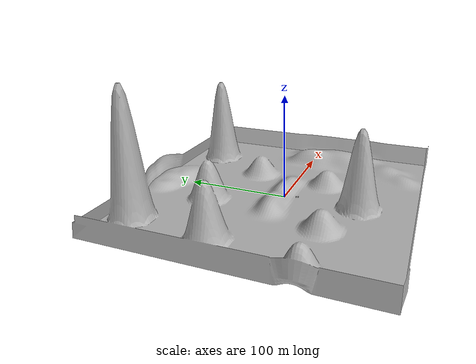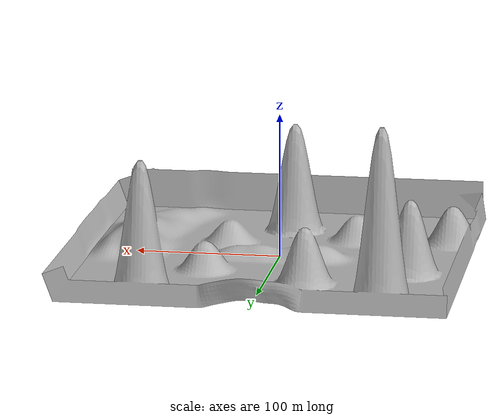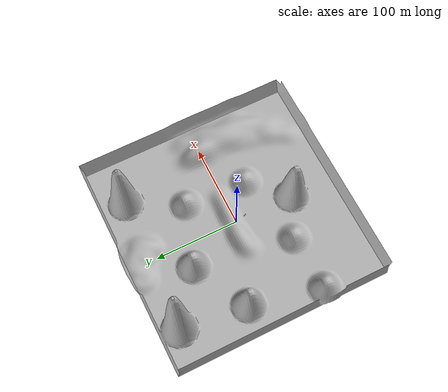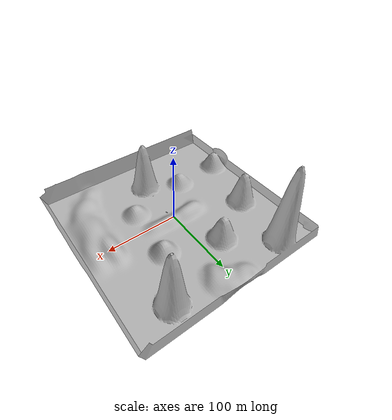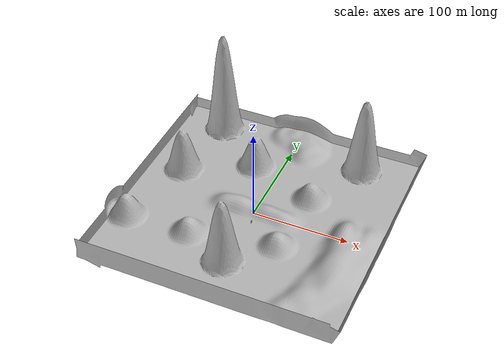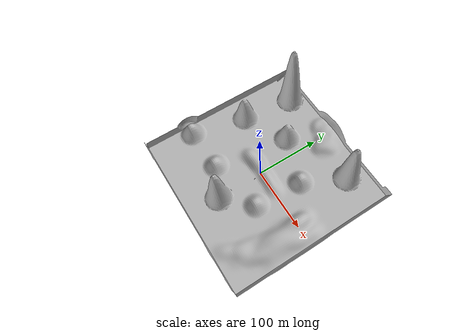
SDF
<sdf version='1.10'>
  <world name='empty'>
    <physics name='1ms' type='ignored'>
      <max_step_size>0.001</max_step_size>
      <real_time_factor>1</real_time_factor>
      <real_time_update_rate>1000</real_time_update_rate>
    </physics>
    <plugin name='gz::sim::systems::Physics' filename='gz-sim-physics-system'/>
    <plugin name='gz::sim::systems::UserCommands' filename='gz-sim-user-commands-system'/>
    <plugin name='gz::sim::systems::SceneBroadcaster' filename='gz-sim-scene-broadcaster-system'/>
    <scene>
      <grid>false</grid>
      <ambient>0.400000006 0.400000006 0.400000006 1</ambient>
      <background>0.699999988 0.699999988 0.699999988 1</background>
      <shadows>true</shadows>
    </scene>
    <gravity>0 0 -9.8000000000000007</gravity>
    <magnetic_field>5.5644999999999998e-06 2.2875799999999999e-05 -4.2388400000000002e-05</magnetic_field>
    <atmosphere type='adiabatic'/>
    <model name='WorldEnvirement'>
      <static>true</static>
      <pose>0 0 0 0 0 0</pose>
      <link name='link'>
        <collision name='collision'>
          <geometry>
            <mesh>
              <scale>20 20 20</scale>
              <uri>file:///home/ihackerubuntu/ProjectFiles/Practice/Practice_ROS2/ros2_ws_2/install/robot_depth_with_camera_sensor/share/robot_depth_with_camera_sensor/worlds/wld.dae</uri>
            </mesh>
          </geometry>
        </collision>
        <visual name='visual'>
          <geometry>
            <mesh>
              <scale>20 20 20</scale>
              <uri>file:///home/ihackerubuntu/ProjectFiles/Practice/Practice_ROS2/ros2_ws_2/install/robot_depth_with_camera_sensor/share/robot_depth_with_camera_sensor/worlds/wld.dae</uri>
            </mesh>
          </geometry>
        </visual>
        <pose>0 0 0 0 0 0</pose>
        <inertial>
          <pose>0 0 0 0 0 0</pose>
          <mass>1</mass>
          <inertia>
            <ixx>1</ixx>
            <ixy>0</ixy>
            <ixz>0</ixz>
            <iyy>1</iyy>
            <iyz>0</iyz>
            <izz>1</izz>
          </inertia>
        </inertial>
        <enable_wind>false</enable_wind>
      </link>
      <self_collide>false</self_collide>
    </model>
    <model name='box'>
      <pose>2.817174088762108 -11.283354013721219 0.51151011282542402 0.015466907097069991 -0.001482549801671233 -0.00045480580201789526</pose>
      <link name='box_link'>
        <inertial>
          <inertia>
            <ixx>0.16666</ixx>
            <ixy>0</ixy>
            <ixz>0</ixz>
            <iyy>0.16666</iyy>
            <iyz>0</iyz>
            <izz>0.16666</izz>
          </inertia>
          <mass>1</mass>
          <pose>0 0 0 0 0 0</pose>
        </inertial>
        <collision name='box_collision'>
          <geometry>
            <box>
              <size>1 1 1</size>
            </box>
          </geometry>
          <surface>
            <friction>
              <ode/>
            </friction>
            <bounce/>
            <contact/>
          </surface>
        </collision>
        <visual name='box_visual'>
          <geometry>
            <box>
              <size>1 1 1</size>
            </box>
          </geometry>
          <material>
            <ambient>0.300000012 0.300000012 0.300000012 1</ambient>
            <diffuse>0.699999988 0.699999988 0.699999988 1</diffuse>
            <specular>1 1 1 1</specular>
          </material>
        </visual>
        <pose>0 0 0 0 0 0</pose>
        <enable_wind>false</enable_wind>
      </link>
      <static>false</static>
      <self_collide>false</self_collide>
    </model>
    <model name='cylinder'>
      <pose>3.4265248581320278 -13.108614356038109 0.50142861994986132 0.002226028669406562 -0.0010636267277804644 -1.3447903982485505e-06</pose>
      <link name='cylinder_link'>
        <inertial>
          <inertia>
            <ixx>0.14580000000000001</ixx>
            <ixy>0</ixy>
            <ixz>0</ixz>
            <iyy>0.14580000000000001</iyy>
            <iyz>0</iyz>
            <izz>0.125</izz>
          </inertia>
          <mass>1</mass>
          <pose>0 0 0 0 0 0</pose>
        </inertial>
        <collision name='cylinder_collision'>
          <geometry>
            <cylinder>
              <radius>0.5</radius>
              <length>1</length>
            </cylinder>
          </geometry>
          <surface>
            <friction>
              <ode/>
            </friction>
            <bounce/>
            <contact/>
          </surface>
        </collision>
        <visual name='cylinder_visual'>
          <geometry>
            <cylinder>
              <radius>0.5</radius>
              <length>1</length>
            </cylinder>
          </geometry>
          <material>
            <ambient>0.300000012 0.300000012 0.300000012 1</ambient>
            <diffuse>0.699999988 0.699999988 0.699999988 1</diffuse>
            <specular>1 1 1 1</specular>
          </material>
        </visual>
        <pose>0 0 0 0 0 0</pose>
        <enable_wind>false</enable_wind>
      </link>
      <static>false</static>
      <self_collide>false</self_collide>
    </model>
    <light name='sun' type='directional'>
      <pose>0 0 100 0 0 0</pose>
      <cast_shadows>true</cast_shadows>
      <intensity>1</intensity>
      <direction>0 1 1</direction>
      <diffuse>0.800000012 0.800000012 0.800000012 1</diffuse>
      <specular>0.100001 0.100001 0.100001 1</specular>
      <attenuation>
        <range>1000</range>
        <linear>1</linear>
        <constant>0.90000000000000002</constant>
        <quadratic>0.001</quadratic>
      </attenuation>
      <spot>
        <inner_angle>0</inner_angle>
        <outer_angle>0</outer_angle>
        <falloff>0</falloff>
      </spot>
    </light>
  </world>
</sdf>
